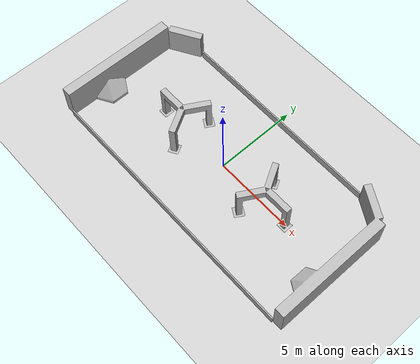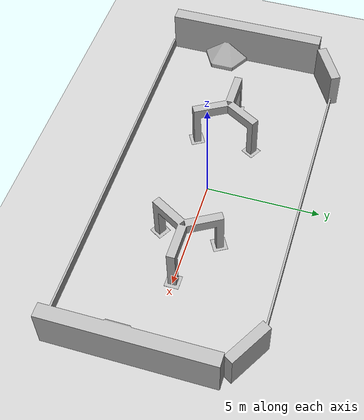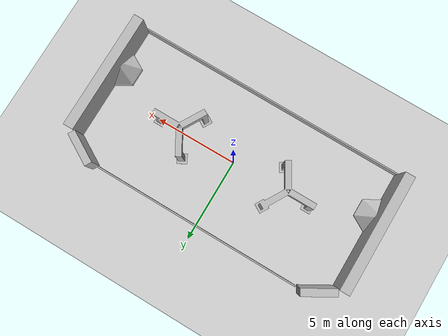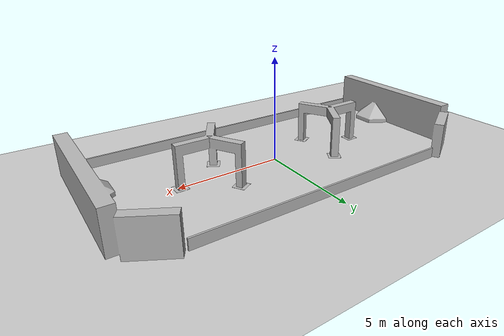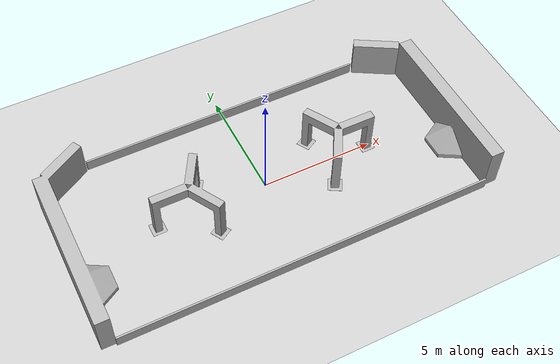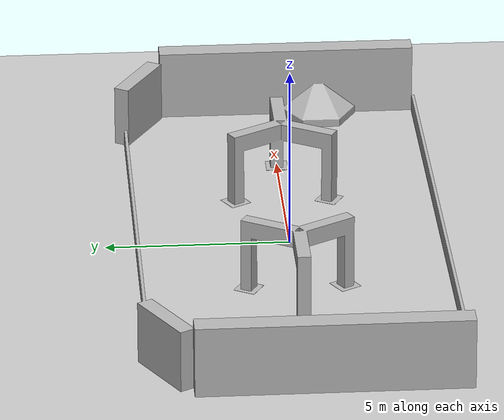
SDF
<sdf version="1.7">
 <world name="default">
  <light name="light_fl" type="directional">
   <pose>0 0 -10 -0 0</pose>
   <diffuse>0.4 0.4 0.4 1</diffuse>
   <specular>0.1 0.1 0.1 1</specular>
   <attenuation>
    <range>1000</range>
    <constant>0.9</constant>
    <linear>0.01</linear>
    <quadratic>0.001</quadratic>
   </attenuation>
   <direction>-0.5 -0.5 -0.5</direction>
   <spot><inner_angle>0</inner_angle><outer_angle>0</outer_angle><falloff>0</falloff></spot>
  </light>
  <light name="light_fr" type="directional">
   <pose>0 0 -0.5 -0 0</pose>
   <diffuse>0.4 0.4 0.4 1</diffuse>
   <specular>0.1 0.1 0.1 1</specular>
   <attenuation>
    <range>1000</range>
    <constant>0.9</constant>
    <linear>0.01</linear>
    <quadratic>0.001</quadratic>
   </attenuation>
   <direction>-0.5 0.5 -0.5</direction>
   <spot><inner_angle>0</inner_angle><outer_angle>0</outer_angle><falloff>0</falloff></spot>
  </light>
  <light name="light_bl" type="directional">
   <pose>0 0 -0.5 -0 0</pose>
   <diffuse>0.4 0.4 0.4 1</diffuse>
   <specular>0.1 0.1 0.1 1</specular>
   <attenuation>
    <range>1000</range>
    <constant>0.9</constant>
    <linear>0.01</linear>
    <quadratic>0.001</quadratic>
   </attenuation>
   <direction>0.5 -0.5 -0.5</direction>
   <spot><inner_angle>0</inner_angle><outer_angle>0</outer_angle><falloff>0</falloff></spot>
  </light>
  <light name="light_br" type="directional">
   <pose>0 0 -0.5 -0 0</pose>
   <diffuse>0.4 0.4 0.4 1</diffuse>
   <specular>0.1 0.1 0.1 1</specular>
   <attenuation>
    <range>1000</range>
    <constant>0.9</constant>
    <linear>0.01</linear>
    <quadratic>0.001</quadratic>
   </attenuation>
   <direction>0.5 0.5 -0.5</direction>
   <spot><inner_angle>0</inner_angle><outer_angle>0</outer_angle><falloff>0</falloff></spot>
  </light>
  <model name="FRC_Field_2024">
   <static>1</static>
   <link name="field">
    <visual name="visual">
     <geometry>
      <mesh>
       <uri>/home/ajahueym/Documents/Gits/Overture-ROS/src/robot_simulation/models/FRC_Field_2024/FRC_Field_2024.dae</uri>
      </mesh>
     </geometry>
    </visual>
    <collision name="collision">
     <geometry>
      <mesh>
       <uri>/home/ajahueym/Documents/Gits/Overture-ROS/src/robot_simulation/models/FRC_Field_2024/FRC_Field_2024_Collision.dae</uri>
       <scale>1 1 1</scale>
      </mesh>
     </geometry>
     <surface>
      <contact>
       <collide_bitmask>65535</collide_bitmask>
       <ode><min_depth>0.01</min_depth><kp>1e15</kp><kd>1e13</kd></ode>
      </contact>
      <friction><ode><mu>100</mu><mu2>100</mu2></ode></friction>
     </surface>
    </collision>
    <cast_shadows>0</cast_shadows>
   </link>
  </model>
  <model name="ground_plane">
   <static>1</static>
   <link name="link">
    <visual name="visual">
     <cast_shadows>0</cast_shadows>
     <geometry><plane><normal>0 0 1</normal><size>100 100</size></plane></geometry>
     <material>
      <script><uri>file://media/materials/scripts/gazebo.material</uri><name>Gazebo/Grey</name></script>
     </material>
    </visual>
    <collision name="collision">
     <geometry><plane><normal>0 0 1</normal><size>100 100</size></plane></geometry>
     <surface>
      <contact>
       <collide_bitmask>65535</collide_bitmask>
       <ode><min_depth>0.01</min_depth><kp>1e15</kp><kd>1e13</kd></ode>
      </contact>
      <friction><ode><mu>100</mu><mu2>100</mu2></ode></friction>
     </surface>
    </collision>
   </link>
  </model>
  <gravity>0 0 -9.8</gravity>
  <magnetic_field>6e-06 2.3e-05 -4.2e-05</magnetic_field>
  <atmosphere type="adiabatic"/>
  <physics type="ode">
   <ode>
    <solver><type>quick</type><iters>100</iters></solver>
    <constraints>
     <contact_max_correcting_vel>0.1</contact_max_correcting_vel>
     <contact_surface_layer>0.0001</contact_surface_layer>
    </constraints>
   </ode>
  </physics>
  <scene><ambient>0.4 0.4 0.4 1</ambient><background>0.7 0.7 0.7 1</background><shadows>1</shadows></scene>
  <audio><device>default</device></audio>
  <spherical_coordinates>
   <surface_model>EARTH_WGS84</surface_model>
   <latitude_deg>0</latitude_deg>
   <longitude_deg>0</longitude_deg>
   <elevation>0</elevation>
   <heading_deg>0</heading_deg>
  </spherical_coordinates>
  <plugin filename="libnt_world_telemetry_plugin.so" name="nt_simworld_telemetry"/>
 </world>
</sdf>
